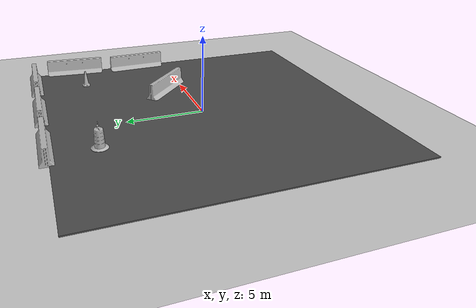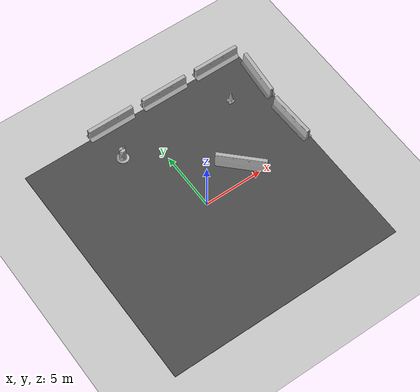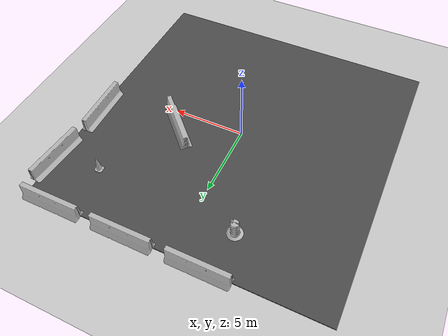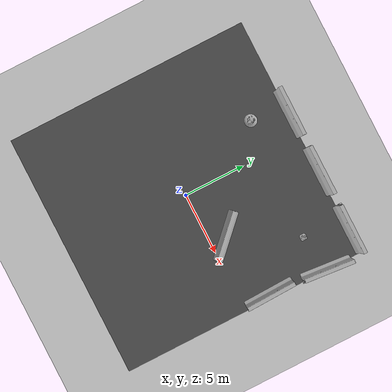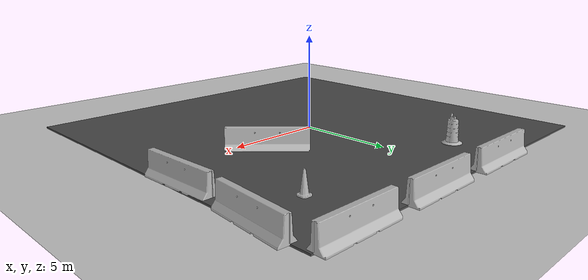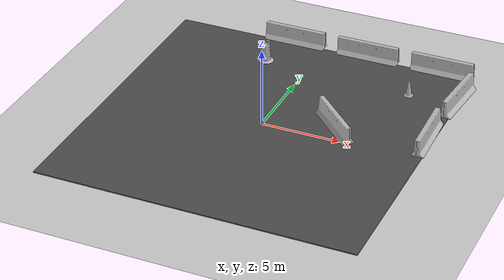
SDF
<sdf version="1.6">
 <world name="default">
  <model name="ground_plane">
   <static>1</static>
   <link name="link">
    <collision name="collision">
     <geometry><plane><normal>0 0 1</normal><size>100 100</size></plane></geometry>
     <surface><friction><ode><mu>100</mu><mu2>50</mu2></ode></friction></surface>
    </collision>
    <visual name="visual">
     <cast_shadows>0</cast_shadows>
     <geometry><plane><normal>0 0 1</normal><size>100 100</size></plane></geometry>
     <material>
      <script><uri>file://media/materials/scripts/gazebo.material</uri><name>Gazebo/Grey</name></script>
     </material>
    </visual>
    <velocity_decay><linear>0</linear><angular>0</angular></velocity_decay>
   </link>
  </model>
  <model name="jersey_barrier_4">
   <static>1</static>
   <link name="link">
    <visual name="visual">
     <geometry><mesh><uri>model://jersey_barrier/meshes/jersey_barrier.dae</uri></mesh></geometry>
    </visual>
    <collision name="upright">
     <pose>0 0 0.5715 0 -0 0</pose>
     <geometry><box><size>4.06542 0.3063 1.143</size></box></geometry>
    </collision>
    <collision name="base">
     <pose>0 0 0.032258 0 -0 0</pose>
     <geometry><box><size>4.06542 0.8107 0.064516</size></box></geometry>
    </collision>
    <collision name="base2">
     <pose>0 0 0.1 0 -0 0</pose>
     <geometry><box><size>4.06542 0.65 0.1</size></box></geometry>
    </collision>
    <collision name="base3">
     <pose>0 0 0.2 0 -0 0</pose>
     <geometry><box><size>4.06542 0.5 0.1</size></box></geometry>
    </collision>
    <collision name="left-angle">
     <pose>0 -0.224 0.2401 0.9 -0 0</pose>
     <geometry><box><size>4.06542 0.5 0.064516</size></box></geometry>
    </collision>
    <collision name="right-angle">
     <pose>0 0.224 0.2401 -0.9 0 0</pose>
     <geometry><box><size>4.06542 0.5 0.064516</size></box></geometry>
    </collision>
    <velocity_decay><linear>0</linear><angular>0</angular></velocity_decay>
   </link>
   <pose>-2 10 0 0 -0 0</pose>
  </model>
  <model name="jersey_barrier_5">
   <static>1</static>
   <link name="link">
    <visual name="visual">
     <geometry><mesh><uri>model://jersey_barrier/meshes/jersey_barrier.dae</uri></mesh></geometry>
    </visual>
    <collision name="upright">
     <pose>0 0 0.5715 0 -0 0</pose>
     <geometry><box><size>4.06542 0.3063 1.143</size></box></geometry>
    </collision>
    <collision name="base">
     <pose>0 0 0.032258 0 -0 0</pose>
     <geometry><box><size>4.06542 0.8107 0.064516</size></box></geometry>
    </collision>
    <collision name="base2">
     <pose>0 0 0.1 0 -0 0</pose>
     <geometry><box><size>4.06542 0.65 0.1</size></box></geometry>
    </collision>
    <collision name="base3">
     <pose>0 0 0.2 0 -0 0</pose>
     <geometry><box><size>4.06542 0.5 0.1</size></box></geometry>
    </collision>
    <collision name="left-angle">
     <pose>0 -0.224 0.2401 0.9 -0 0</pose>
     <geometry><box><size>4.06542 0.5 0.064516</size></box></geometry>
    </collision>
    <collision name="right-angle">
     <pose>0 0.224 0.2401 -0.9 0 0</pose>
     <geometry><box><size>4.06542 0.5 0.064516</size></box></geometry>
    </collision>
    <velocity_decay><linear>0</linear><angular>0</angular></velocity_decay>
   </link>
   <pose>3 10 0 0 -0 0</pose>
  </model>
  <model name="jersey_barrier_6">
   <static>1</static>
   <link name="link">
    <visual name="visual">
     <geometry><mesh><uri>model://jersey_barrier/meshes/jersey_barrier.dae</uri></mesh></geometry>
    </visual>
    <collision name="upright">
     <pose>0 0 0.5715 0 -0 0</pose>
     <geometry><box><size>4.06542 0.3063 1.143</size></box></geometry>
    </collision>
    <collision name="base">
     <pose>0 0 0.032258 0 -0 0</pose>
     <geometry><box><size>4.06542 0.8107 0.064516</size></box></geometry>
    </collision>
    <collision name="base2">
     <pose>0 0 0.1 0 -0 0</pose>
     <geometry><box><size>4.06542 0.65 0.1</size></box></geometry>
    </collision>
    <collision name="base3">
     <pose>0 0 0.2 0 -0 0</pose>
     <geometry><box><size>4.06542 0.5 0.1</size></box></geometry>
    </collision>
    <collision name="left-angle">
     <pose>0 -0.224 0.2401 0.9 -0 0</pose>
     <geometry><box><size>4.06542 0.5 0.064516</size></box></geometry>
    </collision>
    <collision name="right-angle">
     <pose>0 0.224 0.2401 -0.9 0 0</pose>
     <geometry><box><size>4.06542 0.5 0.064516</size></box></geometry>
    </collision>
    <velocity_decay><linear>0</linear><angular>0</angular></velocity_decay>
   </link>
   <pose>8 10 0 0 -0 0</pose>
  </model>
  <model name="jersey_barrier_8">
   <static>1</static>
   <link name="link">
    <visual name="visual">
     <geometry><mesh><uri>model://jersey_barrier/meshes/jersey_barrier.dae</uri></mesh></geometry>
    </visual>
    <collision name="upright">
     <pose>0 0 0.5715 0 -0 0</pose>
     <geometry><box><size>4.06542 0.3063 1.143</size></box></geometry>
    </collision>
    <collision name="base">
     <pose>0 0 0.032258 0 -0 0</pose>
     <geometry><box><size>4.06542 0.8107 0.064516</size></box></geometry>
    </collision>
    <collision name="base2">
     <pose>0 0 0.1 0 -0 0</pose>
     <geometry><box><size>4.06542 0.65 0.1</size></box></geometry>
    </collision>
    <collision name="base3">
     <pose>0 0 0.2 0 -0 0</pose>
     <geometry><box><size>4.06542 0.5 0.1</size></box></geometry>
    </collision>
    <collision name="left-angle">
     <pose>0 -0.224 0.2401 0.9 -0 0</pose>
     <geometry><box><size>4.06542 0.5 0.064516</size></box></geometry>
    </collision>
    <collision name="right-angle">
     <pose>0 0.224 0.2401 -0.9 0 0</pose>
     <geometry><box><size>4.06542 0.5 0.064516</size></box></geometry>
    </collision>
    <velocity_decay><linear>0</linear><angular>0</angular></velocity_decay>
   </link>
   <pose>9.70141 2.24369 0 0 -0 1.6</pose>
  </model>
  <model name="jersey_barrier_13">
   <static>1</static>
   <link name="link">
    <visual name="visual">
     <geometry><mesh><uri>model://jersey_barrier/meshes/jersey_barrier.dae</uri></mesh></geometry>
    </visual>
    <collision name="upright">
     <pose>0 0 0.5715 0 -0 0</pose>
     <geometry><box><size>4.06542 0.3063 1.143</size></box></geometry>
    </collision>
    <collision name="base">
     <pose>0 0 0.032258 0 -0 0</pose>
     <geometry><box><size>4.06542 0.8107 0.064516</size></box></geometry>
    </collision>
    <collision name="base2">
     <pose>0 0 0.1 0 -0 0</pose>
     <geometry><box><size>4.06542 0.65 0.1</size></box></geometry>
    </collision>
    <collision name="base3">
     <pose>0 0 0.2 0 -0 0</pose>
     <geometry><box><size>4.06542 0.5 0.1</size></box></geometry>
    </collision>
    <collision name="left-angle">
     <pose>0 -0.224 0.2401 0.9 -0 0</pose>
     <geometry><box><size>4.06542 0.5 0.064516</size></box></geometry>
    </collision>
    <collision name="right-angle">
     <pose>0 0.224 0.2401 -0.9 0 0</pose>
     <geometry><box><size>4.06542 0.5 0.064516</size></box></geometry>
    </collision>
    <velocity_decay><linear>0</linear><angular>0</angular></velocity_decay>
   </link>
   <pose>10 7 0 0 -0 1.48</pose>
  </model>
  <model name="jersey_barrier_15">
   <static>1</static>
   <link name="link">
    <visual name="visual">
     <geometry><mesh><uri>model://jersey_barrier/meshes/jersey_barrier.dae</uri></mesh></geometry>
    </visual>
    <collision name="upright">
     <pose>0 0 0.5715 0 -0 0</pose>
     <geometry><box><size>4.06542 0.3063 1.143</size></box></geometry>
    </collision>
    <collision name="base">
     <pose>0 0 0.032258 0 -0 0</pose>
     <geometry><box><size>4.06542 0.8107 0.064516</size></box></geometry>
    </collision>
    <collision name="base2">
     <pose>0 0 0.1 0 -0 0</pose>
     <geometry><box><size>4.06542 0.65 0.1</size></box></geometry>
    </collision>
    <collision name="base3">
     <pose>0 0 0.2 0 -0 0</pose>
     <geometry><box><size>4.06542 0.5 0.1</size></box></geometry>
    </collision>
    <collision name="left-angle">
     <pose>0 -0.224 0.2401 0.9 -0 0</pose>
     <geometry><box><size>4.06542 0.5 0.064516</size></box></geometry>
    </collision>
    <collision name="right-angle">
     <pose>0 0.224 0.2401 -0.9 0 0</pose>
     <geometry><box><size>4.06542 0.5 0.064516</size></box></geometry>
    </collision>
    <velocity_decay><linear>0</linear><angular>0</angular></velocity_decay>
   </link>
   <pose>4.18544 1.29748 0 0 -0 2.36</pose>
  </model>
  <model name="Construction Cone_0">
   <link name="link">
    <collision name="collision">
     <geometry>
      <mesh><scale>10 10 10</scale><uri>model://construction_cone/meshes/construction_cone.dae</uri></mesh>
     </geometry>
    </collision>
    <visual name="visual">
     <geometry>
      <mesh><scale>10 10 10</scale><uri>model://construction_cone/meshes/construction_cone.dae</uri></mesh>
     </geometry>
    </visual>
    <velocity_decay><linear>0</linear><angular>0</angular></velocity_decay>
    <inertial>
     <inertia><ixx>1</ixx><ixy>0</ixy><ixz>0</ixz><iyy>1</iyy><iyz>0</iyz><izz>1</izz></inertia>
     <mass>1</mass>
    </inertial>
   </link>
   <pose>6.99685 6.55732 0.04902 1e-06 0 -0.007011</pose>
   <static>0</static>
  </model>
  <model name="asphalt_plane">
   <static>1</static>
   <link name="link">
    <collision name="collision"><geometry><box><size>20 20 0.1</size></box></geometry></collision>
    <visual name="visual">
     <cast_shadows>0</cast_shadows>
     <geometry><box><size>20 20 0.1</size></box></geometry>
     <material>
      <script>
       <uri>model://asphalt_plane/materials/scripts</uri>
       <uri>model://asphalt_plane/materials/textures</uri>
       <name>vrc/asphalt</name>
      </script>
     </material>
    </visual>
    <velocity_decay><linear>0</linear><angular>0</angular></velocity_decay>
   </link>
   <pose>0.076733 -0.110379 0 0 -0 0</pose>
  </model>
  <model name="Construction Barrel_7">
   <link name="link">
    <inertial>
     <pose>0 0 0.4 0 -0 0</pose>
     <mass>500</mass>
     <inertia><ixx>51.2096</ixx><iyy>51.2096</iyy><izz>25</izz><ixy>0</ixy><ixz>0</ixz><iyz>0</iyz></inertia>
    </inertial>
    <collision name="collision">
     <geometry><mesh><uri>model://construction_barrel/meshes/construction_barrel.dae</uri></mesh></geometry>
    </collision>
    <visual name="visual">
     <geometry><mesh><uri>model://construction_barrel/meshes/construction_barrel.dae</uri></mesh></geometry>
    </visual>
    <velocity_decay><linear>0</linear><angular>0</angular></velocity_decay>
   </link>
   <pose>-2.84382 7.07547 0.049918 -0.000161 -0.000335 0.07036</pose>
   <static>0</static>
  </model>
 </world>
</sdf>
